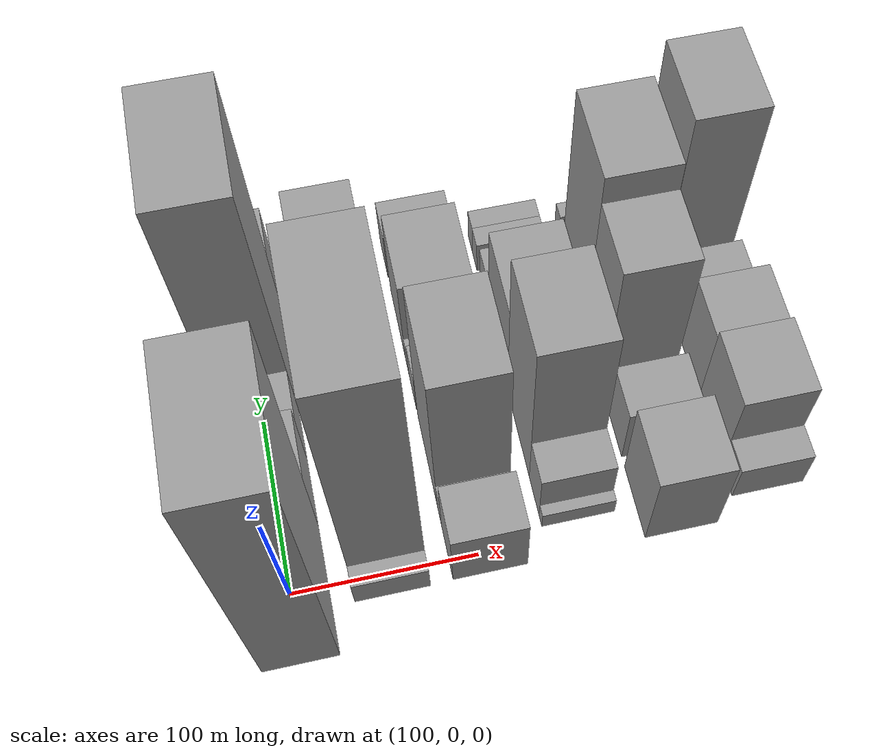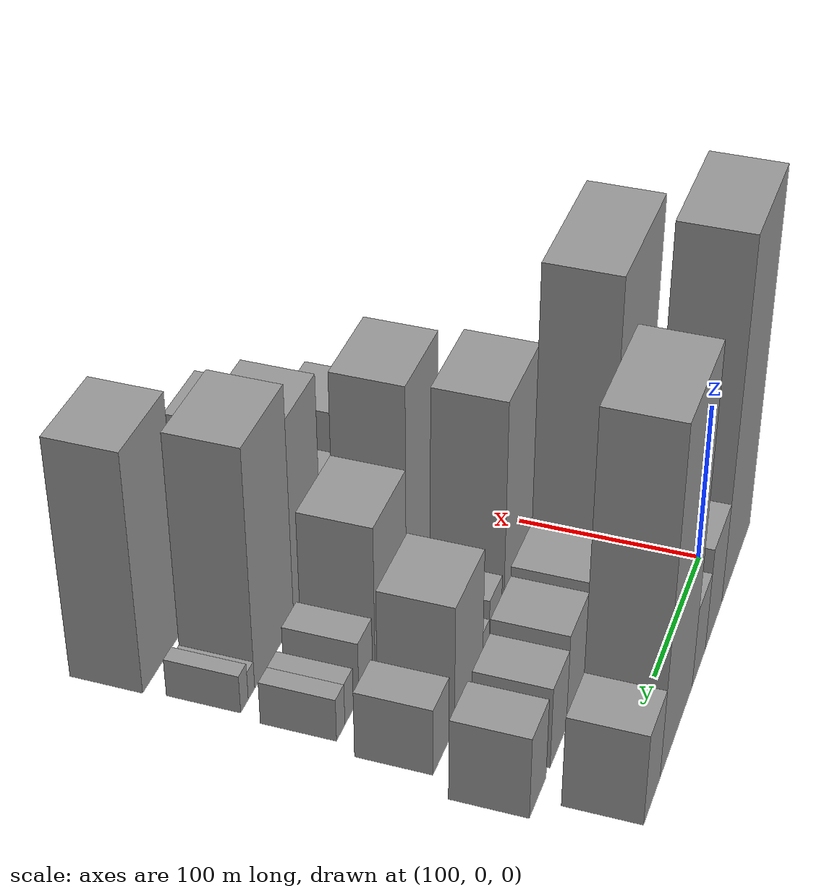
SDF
<sdf version="1.6">
 <world name="default">
  <model name="building_22">
   <static>1</static>
   <pose>100.0000 -1.7306 0 0.000000 0.000000 0.000000</pose>
   <link name="link">
    <pose>0 0 112.50 0 0 0</pose>
    <collision name="collision"><geometry><box><size>40.0000 70.8834 225.0000</size></box></geometry></collision>
    <visual name="visual">
     <cast_shadows>0</cast_shadows>
     <geometry><box><size>40.0000 70.8834 225.0000</size></box></geometry>
     <material>
      <script>
       <uri>model://grey_wall/materials/scripts</uri>
       <uri>model://grey_wall/materials/textures</uri>
       <name>vrc/grey_wall</name>
      </script>
     </material>
    </visual>
   </link>
  </model>
  <model name="building_23">
   <static>1</static>
   <pose>100.0000 53.0281 0 0.000000 0.000000 0.000000</pose>
   <link name="link">
    <pose>0 0 33.00 0 0 0</pose>
    <collision name="collision"><geometry><box><size>40.0000 38.6341 66.0000</size></box></geometry></collision>
    <visual name="visual">
     <cast_shadows>0</cast_shadows>
     <geometry><box><size>40.0000 38.6341 66.0000</size></box></geometry>
     <material>
      <script>
       <uri>model://grey_wall/materials/scripts</uri>
       <uri>model://grey_wall/materials/textures</uri>
       <name>vrc/grey_wall</name>
      </script>
     </material>
    </visual>
   </link>
  </model>
  <model name="building_24">
   <static>1</static>
   <pose>100.0000 87.2513 0 0.000000 0.000000 0.000000</pose>
   <link name="link">
    <pose>0 0 25.50 0 0 0</pose>
    <collision name="collision"><geometry><box><size>40.0000 29.8123 51.0000</size></box></geometry></collision>
    <visual name="visual">
     <cast_shadows>0</cast_shadows>
     <geometry><box><size>40.0000 29.8123 51.0000</size></box></geometry>
     <material>
      <script>
       <uri>model://grey_wall/materials/scripts</uri>
       <uri>model://grey_wall/materials/textures</uri>
       <name>vrc/grey_wall</name>
      </script>
     </material>
    </visual>
   </link>
  </model>
  <model name="building_25">
   <static>1</static>
   <pose>100.0000 136.0312 0 0.000000 0.000000 0.000000</pose>
   <link name="link">
    <pose>0 0 105.00 0 0 0</pose>
    <collision name="collision"><geometry><box><size>40.0000 67.7475 210.0000</size></box></geometry></collision>
    <visual name="visual">
     <cast_shadows>0</cast_shadows>
     <geometry><box><size>40.0000 67.7475 210.0000</size></box></geometry>
     <material>
      <script>
       <uri>model://grey_wall/materials/scripts</uri>
       <uri>model://grey_wall/materials/textures</uri>
       <name>vrc/grey_wall</name>
      </script>
     </material>
    </visual>
   </link>
  </model>
  <model name="building_26">
   <static>1</static>
   <pose>100.0000 186.0648 0 0.000000 0.000000 0.000000</pose>
   <link name="link">
    <pose>0 0 28.50 0 0 0</pose>
    <collision name="collision"><geometry><box><size>40.0000 32.3198 57.0000</size></box></geometry></collision>
    <visual name="visual">
     <cast_shadows>0</cast_shadows>
     <geometry><box><size>40.0000 32.3198 57.0000</size></box></geometry>
     <material>
      <script>
       <uri>model://grey_wall/materials/scripts</uri>
       <uri>model://grey_wall/materials/textures</uri>
       <name>vrc/grey_wall</name>
      </script>
     </material>
    </visual>
   </link>
  </model>
  <model name="building_71">
   <static>1</static>
   <pose>152.0000 -5.7813 0 0.000000 0.000000 0.000000</pose>
   <link name="link">
    <pose>0 0 12.00 0 0 0</pose>
    <collision name="collision"><geometry><box><size>40.0000 11.3581 24.0000</size></box></geometry></collision>
    <visual name="visual">
     <cast_shadows>0</cast_shadows>
     <geometry><box><size>40.0000 11.3581 24.0000</size></box></geometry>
     <material>
      <script>
       <uri>model://grey_wall/materials/scripts</uri>
       <uri>model://grey_wall/materials/textures</uri>
       <name>vrc/grey_wall</name>
      </script>
     </material>
    </visual>
   </link>
  </model>
  <model name="building_72">
   <static>1</static>
   <pose>152.0000 39.7575 0 0.000000 0.000000 0.000000</pose>
   <link name="link">
    <pose>0 0 109.50 0 0 0</pose>
    <collision name="collision"><geometry><box><size>40.0000 79.7196 219.0000</size></box></geometry></collision>
    <visual name="visual">
     <cast_shadows>0</cast_shadows>
     <geometry><box><size>40.0000 79.7196 219.0000</size></box></geometry>
     <material>
      <script>
       <uri>model://grey_wall/materials/scripts</uri>
       <uri>model://grey_wall/materials/textures</uri>
       <name>vrc/grey_wall</name>
      </script>
     </material>
    </visual>
   </link>
  </model>
  <model name="building_73">
   <static>1</static>
   <pose>152.0000 98.0294 0 0.000000 0.000000 0.000000</pose>
   <link name="link">
    <pose>0 0 33.00 0 0 0</pose>
    <collision name="collision"><geometry><box><size>40.0000 36.8241 66.0000</size></box></geometry></collision>
    <visual name="visual">
     <cast_shadows>0</cast_shadows>
     <geometry><box><size>40.0000 36.8241 66.0000</size></box></geometry>
     <material>
      <script>
       <uri>model://grey_wall/materials/scripts</uri>
       <uri>model://grey_wall/materials/textures</uri>
       <name>vrc/grey_wall</name>
      </script>
     </material>
    </visual>
   </link>
  </model>
  <model name="building_74">
   <static>1</static>
   <pose>152.0000 133.5778 0 0.000000 0.000000 0.000000</pose>
   <link name="link">
    <pose>0 0 30.00 0 0 0</pose>
    <collision name="collision"><geometry><box><size>40.0000 34.2728 60.0000</size></box></geometry></collision>
    <visual name="visual">
     <cast_shadows>0</cast_shadows>
     <geometry><box><size>40.0000 34.2728 60.0000</size></box></geometry>
     <material>
      <script>
       <uri>model://grey_wall/materials/scripts</uri>
       <uri>model://grey_wall/materials/textures</uri>
       <name>vrc/grey_wall</name>
      </script>
     </material>
    </visual>
   </link>
  </model>
  <model name="building_75">
   <static>1</static>
   <pose>152.0000 165.1294 0 0.000000 0.000000 0.000000</pose>
   <link name="link">
    <pose>0 0 25.50 0 0 0</pose>
    <collision name="collision"><geometry><box><size>40.0000 28.8304 51.0000</size></box></geometry></collision>
    <visual name="visual">
     <cast_shadows>0</cast_shadows>
     <geometry><box><size>40.0000 28.8304 51.0000</size></box></geometry>
     <material>
      <script>
       <uri>model://grey_wall/materials/scripts</uri>
       <uri>model://grey_wall/materials/textures</uri>
       <name>vrc/grey_wall</name>
      </script>
     </material>
    </visual>
   </link>
  </model>
  <model name="building_76">
   <static>1</static>
   <pose>152.0000 200.7614 0 0.000000 0.000000 0.000000</pose>
   <link name="link">
    <pose>0 0 25.50 0 0 0</pose>
    <collision name="collision"><geometry><box><size>40.0000 28.4336 51.0000</size></box></geometry></collision>
    <visual name="visual">
     <cast_shadows>0</cast_shadows>
     <geometry><box><size>40.0000 28.4336 51.0000</size></box></geometry>
     <material>
      <script>
       <uri>model://grey_wall/materials/scripts</uri>
       <uri>model://grey_wall/materials/textures</uri>
       <name>vrc/grey_wall</name>
      </script>
     </material>
    </visual>
   </link>
  </model>
  <model name="building_121">
   <static>1</static>
   <pose>204.0000 4.6006 0 0.000000 0.000000 0.000000</pose>
   <link name="link">
    <pose>0 0 27.00 0 0 0</pose>
    <collision name="collision"><geometry><box><size>40.0000 30.8091 54.0000</size></box></geometry></collision>
    <visual name="visual">
     <cast_shadows>0</cast_shadows>
     <geometry><box><size>40.0000 30.8091 54.0000</size></box></geometry>
     <material>
      <script>
       <uri>model://grey_wall/materials/scripts</uri>
       <uri>model://grey_wall/materials/textures</uri>
       <name>vrc/grey_wall</name>
      </script>
     </material>
    </visual>
   </link>
  </model>
  <model name="building_122">
   <static>1</static>
   <pose>204.0000 25.6570 0 0.000000 0.000000 0.000000</pose>
   <link name="link">
    <pose>0 0 13.50 0 0 0</pose>
    <collision name="collision"><geometry><box><size>40.0000 11.3038 27.0000</size></box></geometry></collision>
    <visual name="visual">
     <cast_shadows>0</cast_shadows>
     <geometry><box><size>40.0000 11.3038 27.0000</size></box></geometry>
     <material>
      <script>
       <uri>model://grey_wall/materials/scripts</uri>
       <uri>model://grey_wall/materials/textures</uri>
       <name>vrc/grey_wall</name>
      </script>
     </material>
    </visual>
   </link>
  </model>
  <model name="building_123">
   <static>1</static>
   <pose>204.0000 58.3716 0 0.000000 0.000000 0.000000</pose>
   <link name="link">
    <pose>0 0 70.50 0 0 0</pose>
    <collision name="collision"><geometry><box><size>40.0000 54.1253 141.0000</size></box></geometry></collision>
    <visual name="visual">
     <cast_shadows>0</cast_shadows>
     <geometry><box><size>40.0000 54.1253 141.0000</size></box></geometry>
     <material>
      <script>
       <uri>model://grey_wall/materials/scripts</uri>
       <uri>model://grey_wall/materials/textures</uri>
       <name>vrc/grey_wall</name>
      </script>
     </material>
    </visual>
   </link>
  </model>
  <model name="building_124">
   <static>1</static>
   <pose>204.0000 100.2069 0 0.000000 0.000000 0.000000</pose>
   <link name="link">
    <pose>0 0 18.00 0 0 0</pose>
    <collision name="collision"><geometry><box><size>40.0000 21.5454 36.0000</size></box></geometry></collision>
    <visual name="visual">
     <cast_shadows>0</cast_shadows>
     <geometry><box><size>40.0000 21.5454 36.0000</size></box></geometry>
     <material>
      <script>
       <uri>model://grey_wall/materials/scripts</uri>
       <uri>model://grey_wall/materials/textures</uri>
       <name>vrc/grey_wall</name>
      </script>
     </material>
    </visual>
   </link>
  </model>
  <model name="building_125">
   <static>1</static>
   <pose>204.0000 116.3956 0 0.000000 0.000000 0.000000</pose>
   <link name="link">
    <pose>0 0 12.00 0 0 0</pose>
    <collision name="collision"><geometry><box><size>40.0000 10.8320 24.0000</size></box></geometry></collision>
    <visual name="visual">
     <cast_shadows>0</cast_shadows>
     <geometry><box><size>40.0000 10.8320 24.0000</size></box></geometry>
     <material>
      <script>
       <uri>model://grey_wall/materials/scripts</uri>
       <uri>model://grey_wall/materials/textures</uri>
       <name>vrc/grey_wall</name>
      </script>
     </material>
    </visual>
   </link>
  </model>
  <model name="building_126">
   <static>1</static>
   <pose>204.0000 145.1345 0 0.000000 0.000000 0.000000</pose>
   <link name="link">
    <pose>0 0 39.00 0 0 0</pose>
    <collision name="collision"><geometry><box><size>40.0000 46.6458 78.0000</size></box></geometry></collision>
    <visual name="visual">
     <cast_shadows>0</cast_shadows>
     <geometry><box><size>40.0000 46.6458 78.0000</size></box></geometry>
     <material>
      <script>
       <uri>model://grey_wall/materials/scripts</uri>
       <uri>model://grey_wall/materials/textures</uri>
       <name>vrc/grey_wall</name>
      </script>
     </material>
    </visual>
   </link>
  </model>
  <model name="building_127">
   <static>1</static>
   <pose>204.0000 189.7486 0 0.000000 0.000000 0.000000</pose>
   <link name="link">
    <pose>0 0 21.00 0 0 0</pose>
    <collision name="collision"><geometry><box><size>40.0000 24.5822 42.0000</size></box></geometry></collision>
    <visual name="visual">
     <cast_shadows>0</cast_shadows>
     <geometry><box><size>40.0000 24.5822 42.0000</size></box></geometry>
     <material>
      <script>
       <uri>model://grey_wall/materials/scripts</uri>
       <uri>model://grey_wall/materials/textures</uri>
       <name>vrc/grey_wall</name>
      </script>
     </material>
    </visual>
   </link>
  </model>
  <model name="building_176">
   <static>1</static>
   <pose>256.0000 10.7865 0 0.000000 0.000000 0.000000</pose>
   <link name="link">
    <pose>0 0 7.50 0 0 0</pose>
    <collision name="collision"><geometry><box><size>40.0000 6.3102 15.0000</size></box></geometry></collision>
    <visual name="visual">
     <cast_shadows>0</cast_shadows>
     <geometry><box><size>40.0000 6.3102 15.0000</size></box></geometry>
     <material>
      <script>
       <uri>model://grey_wall/materials/scripts</uri>
       <uri>model://grey_wall/materials/textures</uri>
       <name>vrc/grey_wall</name>
      </script>
     </material>
    </visual>
   </link>
  </model>
  <model name="building_177">
   <static>1</static>
   <pose>256.0000 25.2659 0 0.000000 0.000000 0.000000</pose>
   <link name="link">
    <pose>0 0 22.50 0 0 0</pose>
    <collision name="collision"><geometry><box><size>40.0000 22.6486 45.0000</size></box></geometry></collision>
    <visual name="visual">
     <cast_shadows>0</cast_shadows>
     <geometry><box><size>40.0000 22.6486 45.0000</size></box></geometry>
     <material>
      <script>
       <uri>model://grey_wall/materials/scripts</uri>
       <uri>model://grey_wall/materials/textures</uri>
       <name>vrc/grey_wall</name>
      </script>
     </material>
    </visual>
   </link>
  </model>
  <model name="building_178">
   <static>1</static>
   <pose>256.0000 62.6673 0 0.000000 0.000000 0.000000</pose>
   <link name="link">
    <pose>0 0 70.50 0 0 0</pose>
    <collision name="collision"><geometry><box><size>40.0000 52.1542 141.0000</size></box></geometry></collision>
    <visual name="visual">
     <cast_shadows>0</cast_shadows>
     <geometry><box><size>40.0000 52.1542 141.0000</size></box></geometry>
     <material>
      <script>
       <uri>model://grey_wall/materials/scripts</uri>
       <uri>model://grey_wall/materials/textures</uri>
       <name>vrc/grey_wall</name>
      </script>
     </material>
    </visual>
   </link>
  </model>
  <model name="building_179">
   <static>1</static>
   <pose>256.0000 113.3576 0 0.000000 0.000000 0.000000</pose>
   <link name="link">
    <pose>0 0 45.00 0 0 0</pose>
    <collision name="collision"><geometry><box><size>40.0000 49.2265 90.0000</size></box></geometry></collision>
    <visual name="visual">
     <cast_shadows>0</cast_shadows>
     <geometry><box><size>40.0000 49.2265 90.0000</size></box></geometry>
     <material>
      <script>
       <uri>model://grey_wall/materials/scripts</uri>
       <uri>model://grey_wall/materials/textures</uri>
       <name>vrc/grey_wall</name>
      </script>
     </material>
    </visual>
   </link>
  </model>
  <model name="building_180">
   <static>1</static>
   <pose>256.0000 152.2221 0 0.000000 0.000000 0.000000</pose>
   <link name="link">
    <pose>0 0 18.00 0 0 0</pose>
    <collision name="collision"><geometry><box><size>40.0000 20.5025 36.0000</size></box></geometry></collision>
    <visual name="visual">
     <cast_shadows>0</cast_shadows>
     <geometry><box><size>40.0000 20.5025 36.0000</size></box></geometry>
     <material>
      <script>
       <uri>model://grey_wall/materials/scripts</uri>
       <uri>model://grey_wall/materials/textures</uri>
       <name>vrc/grey_wall</name>
      </script>
     </material>
    </visual>
   </link>
  </model>
  <model name="building_181">
   <static>1</static>
   <pose>256.0000 176.6513 0 0.000000 0.000000 0.000000</pose>
   <link name="link">
    <pose>0 0 13.50 0 0 0</pose>
    <collision name="collision"><geometry><box><size>40.0000 12.3559 27.0000</size></box></geometry></collision>
    <visual name="visual">
     <cast_shadows>0</cast_shadows>
     <geometry><box><size>40.0000 12.3559 27.0000</size></box></geometry>
     <material>
      <script>
       <uri>model://grey_wall/materials/scripts</uri>
       <uri>model://grey_wall/materials/textures</uri>
       <name>vrc/grey_wall</name>
      </script>
     </material>
    </visual>
   </link>
  </model>
  <model name="building_182">
   <static>1</static>
   <pose>256.0000 188.7570 0 0.000000 0.000000 0.000000</pose>
   <link name="link">
    <pose>0 0 13.50 0 0 0</pose>
    <collision name="collision"><geometry><box><size>40.0000 11.8554 27.0000</size></box></geometry></collision>
    <visual name="visual">
     <cast_shadows>0</cast_shadows>
     <geometry><box><size>40.0000 11.8554 27.0000</size></box></geometry>
     <material>
      <script>
       <uri>model://grey_wall/materials/scripts</uri>
       <uri>model://grey_wall/materials/textures</uri>
       <name>vrc/grey_wall</name>
      </script>
     </material>
    </visual>
   </link>
  </model>
  <model name="building_228">
   <static>1</static>
   <pose>308.0000 10.4330 0 0.000000 0.000000 0.000000</pose>
   <link name="link">
    <pose>0 0 36.00 0 0 0</pose>
    <collision name="collision"><geometry><box><size>40.0000 41.4963 72.0000</size></box></geometry></collision>
    <visual name="visual">
     <cast_shadows>0</cast_shadows>
     <geometry><box><size>40.0000 41.4963 72.0000</size></box></geometry>
     <material>
      <script>
       <uri>model://grey_wall/materials/scripts</uri>
       <uri>model://grey_wall/materials/textures</uri>
       <name>vrc/grey_wall</name>
      </script>
     </material>
    </visual>
   </link>
  </model>
  <model name="building_229">
   <static>1</static>
   <pose>308.0000 51.9303 0 0.000000 0.000000 0.000000</pose>
   <link name="link">
    <pose>0 0 25.50 0 0 0</pose>
    <collision name="collision"><geometry><box><size>40.0000 29.4984 51.0000</size></box></geometry></collision>
    <visual name="visual">
     <cast_shadows>0</cast_shadows>
     <geometry><box><size>40.0000 29.4984 51.0000</size></box></geometry>
     <material>
      <script>
       <uri>model://grey_wall/materials/scripts</uri>
       <uri>model://grey_wall/materials/textures</uri>
       <name>vrc/grey_wall</name>
      </script>
     </material>
    </visual>
   </link>
  </model>
  <model name="building_230">
   <static>1</static>
   <pose>308.0000 71.4537 0 0.000000 0.000000 0.000000</pose>
   <link name="link">
    <pose>0 0 10.50 0 0 0</pose>
    <collision name="collision"><geometry><box><size>40.0000 9.5484 21.0000</size></box></geometry></collision>
    <visual name="visual">
     <cast_shadows>0</cast_shadows>
     <geometry><box><size>40.0000 9.5484 21.0000</size></box></geometry>
     <material>
      <script>
       <uri>model://grey_wall/materials/scripts</uri>
       <uri>model://grey_wall/materials/textures</uri>
       <name>vrc/grey_wall</name>
      </script>
     </material>
    </visual>
   </link>
  </model>
  <model name="building_231">
   <static>1</static>
   <pose>308.0000 96.9244 0 0.000000 0.000000 0.000000</pose>
   <link name="link">
    <pose>0 0 64.50 0 0 0</pose>
    <collision name="collision"><geometry><box><size>40.0000 41.3930 129.0000</size></box></geometry></collision>
    <visual name="visual">
     <cast_shadows>0</cast_shadows>
     <geometry><box><size>40.0000 41.3930 129.0000</size></box></geometry>
     <material>
      <script>
       <uri>model://grey_wall/materials/scripts</uri>
       <uri>model://grey_wall/materials/textures</uri>
       <name>vrc/grey_wall</name>
      </script>
     </material>
    </visual>
   </link>
  </model>
  <model name="building_232">
   <static>1</static>
   <pose>308.0000 144.8919 0 0.000000 0.000000 0.000000</pose>
   <link name="link">
    <pose>0 0 75.00 0 0 0</pose>
    <collision name="collision"><geometry><box><size>40.0000 54.5420 150.0000</size></box></geometry></collision>
    <visual name="visual">
     <cast_shadows>0</cast_shadows>
     <geometry><box><size>40.0000 54.5420 150.0000</size></box></geometry>
     <material>
      <script>
       <uri>model://grey_wall/materials/scripts</uri>
       <uri>model://grey_wall/materials/textures</uri>
       <name>vrc/grey_wall</name>
      </script>
     </material>
    </visual>
   </link>
  </model>
  <model name="building_233">
   <static>1</static>
   <pose>308.0000 176.5053 0 0.000000 0.000000 0.000000</pose>
   <link name="link">
    <pose>0 0 9.00 0 0 0</pose>
    <collision name="collision"><geometry><box><size>40.0000 8.6848 18.0000</size></box></geometry></collision>
    <visual name="visual">
     <cast_shadows>0</cast_shadows>
     <geometry><box><size>40.0000 8.6848 18.0000</size></box></geometry>
     <material>
      <script>
       <uri>model://grey_wall/materials/scripts</uri>
       <uri>model://grey_wall/materials/textures</uri>
       <name>vrc/grey_wall</name>
      </script>
     </material>
    </visual>
   </link>
  </model>
  <model name="building_234">
   <static>1</static>
   <pose>308.0000 185.8457 0 0.000000 0.000000 0.000000</pose>
   <link name="link">
    <pose>0 0 12.00 0 0 0</pose>
    <collision name="collision"><geometry><box><size>40.0000 9.9959 24.0000</size></box></geometry></collision>
    <visual name="visual">
     <cast_shadows>0</cast_shadows>
     <geometry><box><size>40.0000 9.9959 24.0000</size></box></geometry>
     <material>
      <script>
       <uri>model://grey_wall/materials/scripts</uri>
       <uri>model://grey_wall/materials/textures</uri>
       <name>vrc/grey_wall</name>
      </script>
     </material>
    </visual>
   </link>
  </model>
  <model name="building_279">
   <static>1</static>
   <pose>360.0000 11.6036 0 0.000000 0.000000 0.000000</pose>
   <link name="link">
    <pose>0 0 16.50 0 0 0</pose>
    <collision name="collision"><geometry><box><size>40.0000 18.6051 33.0000</size></box></geometry></collision>
    <visual name="visual">
     <cast_shadows>0</cast_shadows>
     <geometry><box><size>40.0000 18.6051 33.0000</size></box></geometry>
     <material>
      <script>
       <uri>model://grey_wall/materials/scripts</uri>
       <uri>model://grey_wall/materials/textures</uri>
       <name>vrc/grey_wall</name>
      </script>
     </material>
    </visual>
   </link>
  </model>
  <model name="building_280">
   <static>1</static>
   <pose>360.0000 42.1270 0 0.000000 0.000000 0.000000</pose>
   <link name="link">
    <pose>0 0 37.50 0 0 0</pose>
    <collision name="collision"><geometry><box><size>40.0000 42.4417 75.0000</size></box></geometry></collision>
    <visual name="visual">
     <cast_shadows>0</cast_shadows>
     <geometry><box><size>40.0000 42.4417 75.0000</size></box></geometry>
     <material>
      <script>
       <uri>model://grey_wall/materials/scripts</uri>
       <uri>model://grey_wall/materials/textures</uri>
       <name>vrc/grey_wall</name>
      </script>
     </material>
    </visual>
   </link>
  </model>
  <model name="building_281">
   <static>1</static>
   <pose>360.0000 81.5005 0 0.000000 0.000000 0.000000</pose>
   <link name="link">
    <pose>0 0 34.50 0 0 0</pose>
    <collision name="collision"><geometry><box><size>40.0000 36.3054 69.0000</size></box></geometry></collision>
    <visual name="visual">
     <cast_shadows>0</cast_shadows>
     <geometry><box><size>40.0000 36.3054 69.0000</size></box></geometry>
     <material>
      <script>
       <uri>model://grey_wall/materials/scripts</uri>
       <uri>model://grey_wall/materials/textures</uri>
       <name>vrc/grey_wall</name>
      </script>
     </material>
    </visual>
   </link>
  </model>
  <model name="building_282">
   <static>1</static>
   <pose>360.0000 121.4086 0 0.000000 0.000000 0.000000</pose>
   <link name="link">
    <pose>0 0 21.00 0 0 0</pose>
    <collision name="collision"><geometry><box><size>40.0000 23.5110 42.0000</size></box></geometry></collision>
    <visual name="visual">
     <cast_shadows>0</cast_shadows>
     <geometry><box><size>40.0000 23.5110 42.0000</size></box></geometry>
     <material>
      <script>
       <uri>model://grey_wall/materials/scripts</uri>
       <uri>model://grey_wall/materials/textures</uri>
       <name>vrc/grey_wall</name>
      </script>
     </material>
    </visual>
   </link>
  </model>
  <model name="building_283">
   <static>1</static>
   <pose>360.0000 167.0848 0 0.000000 0.000000 0.000000</pose>
   <link name="link">
    <pose>0 0 75.00 0 0 0</pose>
    <collision name="collision"><geometry><box><size>40.0000 51.8414 150.0000</size></box></geometry></collision>
    <visual name="visual">
     <cast_shadows>0</cast_shadows>
     <geometry><box><size>40.0000 51.8414 150.0000</size></box></geometry>
     <material>
      <script>
       <uri>model://grey_wall/materials/scripts</uri>
       <uri>model://grey_wall/materials/textures</uri>
       <name>vrc/grey_wall</name>
      </script>
     </material>
    </visual>
   </link>
  </model>
 </world>
</sdf>
